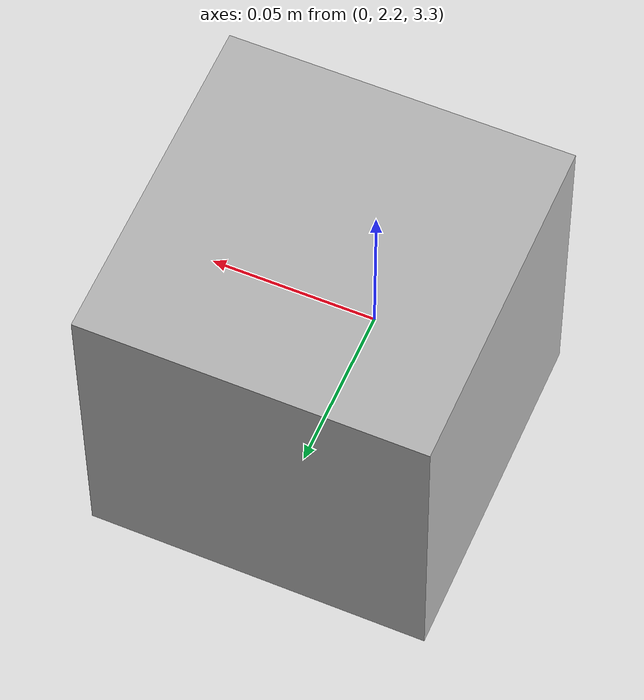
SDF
<?xml version='1.0'?>
<sdf version='1.7'>
  <model name='camera'>
    <link name='link'>
      <inertial>
        <mass>0.1</mass>
        <inertia>
          <ixx>0.000166667</ixx>
          <iyy>0.000166667</iyy>
          <izz>0.000166667</izz>
          <ixy>0</ixy>
          <ixz>0</ixz>
          <iyz>0</iyz>
        </inertia>
        <pose>0 0 0 0 -0 0</pose>
      </inertial>
      <sensor name='camera' type='camera'>
        <camera>
          <horizontal_fov>1.047</horizontal_fov>
          <image>
            <width>320</width>
            <height>240</height>
          </image>
          <clip>
            <near>0.1</near>
            <far>1000</far>
          </clip>
        </camera>
        <always_on>1</always_on>
        <update_rate>30</update_rate>
        <visualize>1</visualize>
      </sensor>
      <self_collide>0</self_collide>
      <enable_wind>0</enable_wind>
      <kinematic>0</kinematic>
      <pose>-0 2.23345 3.33716 -1.58416 -0 -0</pose>
      <visual name='visual'>
        <geometry>
          <box>
            <size>0.1 0.1 0.1</size>
          </box>
        </geometry>
        <material>
          <shader type='pixel'/>
        </material>
        <pose>0 0 0 0 -0 0</pose>
        <transparency>0</transparency>
        <cast_shadows>1</cast_shadows>
      </visual>
      <collision name='collision'>
        <laser_retro>0</laser_retro>
        <max_contacts>10</max_contacts>
        <pose>0 0 0 0 -0 0</pose>
        <geometry>
          <box>
            <size>0.1 0.1 0.1</size>
          </box>
        </geometry>
        <surface>
          <friction>
            <ode>
              <mu>1</mu>
              <mu2>1</mu2>
              <fdir1>0 0 0</fdir1>
              <slip1>0</slip1>
              <slip2>0</slip2>
            </ode>
            <torsional>
              <coefficient>1</coefficient>
              <patch_radius>0</patch_radius>
              <surface_radius>0</surface_radius>
              <use_patch_radius>1</use_patch_radius>
              <ode>
                <slip>0</slip>
              </ode>
            </torsional>
          </friction>
          <bounce>
            <restitution_coefficient>0</restitution_coefficient>
            <threshold>1e+06</threshold>
          </bounce>
          <contact>
            <collide_without_contact>0</collide_without_contact>
            <collide_without_contact_bitmask>1</collide_without_contact_bitmask>
            <collide_bitmask>1</collide_bitmask>
            <ode>
              <soft_cfm>0</soft_cfm>
              <soft_erp>0.2</soft_erp>
              <kp>1e+13</kp>
              <kd>1</kd>
              <max_vel>0.01</max_vel>
              <min_depth>0</min_depth>
            </ode>
            <bullet>
              <split_impulse>1</split_impulse>
              <split_impulse_penetration_threshold>-0.01</split_impulse_penetration_threshold>
              <soft_cfm>0</soft_cfm>
              <soft_erp>0.2</soft_erp>
              <kp>1e+13</kp>
              <kd>1</kd>
            </bullet>
          </contact>
        </surface>
      </collision>
    </link>
    <static>1</static>
    <allow_auto_disable>1</allow_auto_disable>
  </model>
</sdf>
